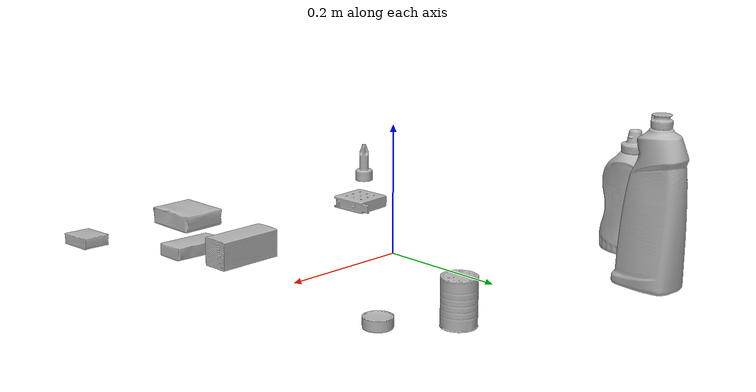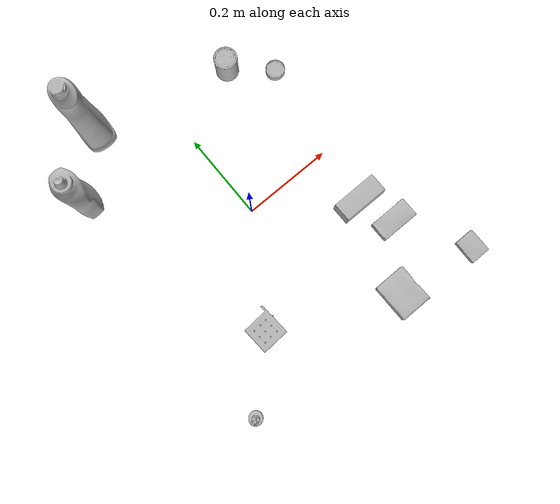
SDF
<?xml version="1.0" ?>
<sdf version="1.4">
  <world name="default">
    <light name="light1" type="point">
      <pose>0 0 1 0 0 0</pose>
      <diffuse>3 3 3 1</diffuse>
      <specular>3 3 3 1</specular>
    </light>
    <light name="light2" type="point">
      <pose>0 0.5 2 0 0 0</pose>
      <diffuse>1 1 1 1</diffuse>
      <specular>1 1 1 1</specular>
    </light>
    <light name="light3" type="point">
      <pose>0 0.5 2 0 0 0</pose>
      <diffuse>3 3 3 1</diffuse>
      <specular>3 3 3 1</specular>
    </light>
    <scene>
      <ambient>0.7 0.7 0.7</ambient>
    </scene>
    <model name="bottle1">
      <link name="link_bottle1">
        <collision name="default">
          <geometry>
            <mesh>
              <uri>model://mustard_bottle/collision_meshes/collision.obj</uri>
              <scale>1.0 1.0 1.0</scale>
            </mesh>
          </geometry>
          <surface>
            <friction>
              <ode>
                <mu>0.5</mu>
                <mu2>0.5</mu2>
              </ode>
            </friction>
          </surface>
        </collision>
        <visual name="default">
          <geometry>
            <mesh>
              <uri>model://mustard_bottle/visual_meshes/visual.dae</uri>
              <scale>1.0 1.0 1.0</scale>
            </mesh>
          </geometry>
        </visual>
        <inertial>
          <mass>0.9814921021461487</mass>
          <pose>0.000503245391882956 -0.00015647400869056582 -0.0174757968634367 0.00041823298570721707 0.000946579165099878 0.024853733541460008</pose>
          <inertia>
            <ixx>0.0027254699</ixx>
            <iyy>0.0023913688</iyy>
            <izz>0.0007182988</izz>
            <ixy>0</ixy>
            <ixz>0</ixz>
            <iyz>0</iyz>
          </inertia>
        </inertial>
      </link>
      <pose>-0.2608605921268463 0.2493351548910141 0.09615200757980347 1.3372007227725095e-05 1.441430237899984e-05 0.023969009317558982</pose>
    </model>
    <model name="bottle2">
      <link name="link_bottle2">
        <collision name="default">
          <geometry>
            <mesh>
              <uri>model://bleach_cleanser/collision_meshes/collision.obj</uri>
              <scale>1.0 1.0 1.0</scale>
            </mesh>
          </geometry>
          <surface>
            <friction>
              <ode>
                <mu>0.5</mu>
                <mu2>0.5</mu2>
              </ode>
            </friction>
          </surface>
        </collision>
        <visual name="default">
          <geometry>
            <mesh>
              <uri>model://bleach_cleanser/visual_meshes/visual.dae</uri>
              <scale>1.0 1.0 1.0</scale>
            </mesh>
          </geometry>
        </visual>
        <inertial>
          <mass>0.5613878965377808</mass>
          <pose>0.00012193182919872925 0.0037838828284293413 -0.02442161738872528 -0.07381670616369514 0.00042011545192634117 -0.006875071107578698</pose>
          <inertia>
            <ixx>0.0027323565</ixx>
            <iyy>0.002546156</iyy>
            <izz>0.0004671619</izz>
            <ixy>0</ixy>
            <ixz>0</ixz>
            <iyz>0</iyz>
          </inertia>
        </inertial>
      </link>
      <pose>-0.14984509348869324 0.3598741292953491 0.12578421831130981 -0.000205574969591132 1.2034427393068497e-05 -0.047810130244131346</pose>
    </model>
    <model name="toy1">
      <link name="link_toy1">
        <collision name="default">
          <geometry>
            <mesh>
              <uri>model://nine_hole_peg_test/collision_meshes/collision.obj</uri>
              <scale>0.5 0.5 0.5</scale>
            </mesh>
          </geometry>
          <surface>
            <friction>
              <ode>
                <mu>0.5</mu>
                <mu2>0.5</mu2>
              </ode>
            </friction>
          </surface>
        </collision>
        <visual name="default">
          <geometry>
            <mesh>
              <uri>model://nine_hole_peg_test/visual_meshes/visual.dae</uri>
              <scale>0.5 0.5 0.5</scale>
            </mesh>
          </geometry>
        </visual>
        <inertial>
          <mass>0.10001979023218155</mass>
          <pose>-0.002308693015947938 -0.0048238071613013744 1.323034393863054e-05 -0.001466679064329537 0.000719417562538249 -0.6342417933325166</pose>
          <inertia>
            <ixx>3.9099352e-05</ixx>
            <iyy>3.650665e-05</iyy>
            <izz>6.851359e-05</izz>
            <ixy>0</ixy>
            <ixz>0</ixz>
            <iyz>0</iyz>
          </inertia>
        </inertial>
      </link>
      <pose>-0.1386803835630417 -0.21114550530910492 0.010385498404502869 3.916402064848071e-09 8.225931026888306e-09 0.06716970125616965</pose>
    </model>
    <model name="toy2">
      <link name="link_toy2">
        <collision name="default">
          <geometry>
            <mesh>
              <uri>model://d_toy_airplane/collision_meshes/collision.obj</uri>
              <scale>1.0 1.0 1.0</scale>
            </mesh>
          </geometry>
          <surface>
            <friction>
              <ode>
                <mu>0.5</mu>
                <mu2>0.5</mu2>
              </ode>
            </friction>
          </surface>
        </collision>
        <visual name="default">
          <geometry>
            <mesh>
              <uri>model://d_toy_airplane/visual_meshes/visual.dae</uri>
              <scale>1.0 1.0 1.0</scale>
            </mesh>
          </geometry>
        </visual>
        <inertial>
          <mass>0.019254321232438087</mass>
          <pose>9.410314669366926e-05 -5.809308640891686e-05 -0.011728096753358841 0.0002669110283705203 0.00467899073598619 0.5194519611142697</pose>
          <inertia>
            <ixx>5.7720713e-06</ixx>
            <iyy>5.776424e-06</iyy>
            <izz>1.7426261e-06</izz>
            <ixy>0</ixy>
            <ixz>0</ixz>
            <iyz>0</iyz>
          </inertia>
        </inertial>
      </link>
      <pose>-0.2699941098690033 -0.33996737003326416 0.03333878517150879 -2.9853162312297402e-05 -0.00017021536056481163 -0.046181195525685836</pose>
    </model>
    <model name="can1">
      <link name="link_can1">
        <collision name="default">
          <geometry>
            <mesh>
              <uri>model://master_chef_can/collision_meshes/collision.obj</uri>
              <scale>0.5 0.5 0.5</scale>
            </mesh>
          </geometry>
          <surface>
            <friction>
              <ode>
                <mu>0.5</mu>
                <mu2>0.5</mu2>
              </ode>
            </friction>
          </surface>
        </collision>
        <visual name="default">
          <geometry>
            <mesh>
              <uri>model://master_chef_can/visual_meshes/visual.dae</uri>
              <scale>0.5 0.5 0.5</scale>
            </mesh>
          </geometry>
        </visual>
        <inertial>
          <mass>0.11909646540880203</mass>
          <pose>-4.661963976104744e-05 1.3926845099376806e-07 -5.07990553160198e-05 -0.0017995128948922 0.0006479239957886283 -0.6102624789319168</pose>
          <inertia>
            <ixx>6.990155e-05</ixx>
            <iyy>6.938709e-05</iyy>
            <izz>3.8625953e-05</izz>
            <ixy>0</ixy>
            <ixz>0</ixz>
            <iyz>0</iyz>
          </inertia>
        </inertial>
      </link>
      <pose>0.1601216197013855 0.28008508682250977 0.03530198708176613 -1.4263570791366288e-06 -7.359926799960313e-07 0.006799836813014068</pose>
    </model>
    <model name="can2">
      <link name="link_can2">
        <collision name="default">
          <geometry>
            <mesh>
              <uri>model://tuna_fish_can/collision_meshes/collision.obj</uri>
              <scale>0.5 0.5 0.5</scale>
            </mesh>
          </geometry>
          <surface>
            <friction>
              <ode>
                <mu>0.5</mu>
                <mu2>0.5</mu2>
              </ode>
            </friction>
          </surface>
        </collision>
        <visual name="default">
          <geometry>
            <mesh>
              <uri>model://tuna_fish_can/visual_meshes/visual.dae</uri>
              <scale>0.5 0.5 0.5</scale>
            </mesh>
          </geometry>
        </visual>
        <inertial>
          <mass>0.019333453848958015</mass>
          <pose>-2.0361452698125504e-05 -7.256490789586678e-06 -0.0005269024986773729 -0.0017944786606280685 0.0001716327651594619 0.24054823336333434</pose>
          <inertia>
            <ixx>2.6139116e-06</ixx>
            <iyy>2.6030175e-06</iyy>
            <izz>4.4727767e-06</izz>
            <ixy>0</ixy>
            <ixz>0</ixz>
            <iyz>0</iyz>
          </inertia>
        </inertial>
      </link>
      <pose>0.23997655510902405 0.21002435684204102 0.008520003408193588 5.8518523496040155e-09 1.7983937193440855e-09 -0.06722805855674743</pose>
    </model>
    <model name="box1">
      <link name="link_box1">
        <collision name="default">
          <geometry>
            <mesh>
              <uri>model://sugar_box/collision_meshes/collision.obj</uri>
              <scale>0.5 0.5 0.5</scale>
            </mesh>
          </geometry>
          <surface>
            <friction>
              <ode>
                <mu>0.5</mu>
                <mu2>0.5</mu2>
              </ode>
            </friction>
          </surface>
        </collision>
        <visual name="default">
          <geometry>
            <mesh>
              <uri>model://sugar_box/visual_meshes/visual.dae</uri>
              <scale>0.5 0.5 0.5</scale>
            </mesh>
          </geometry>
        </visual>
        <inertial>
          <mass>0.11277332901954651</mass>
          <pose>0.0005171863595023751 1.924554817378521e-05 -0.0001818240125430748 -0.00040462603870476286 0.0010506635217257978 0.002615378323397263</pose>
          <inertia>
            <ixx>2.34906e-05</ixx>
            <iyy>7.592646e-05</iyy>
            <izz>9.089305e-05</izz>
            <ixy>0</ixy>
            <ixz>0</ixz>
            <iyz>0</iyz>
          </inertia>
        </inertial>
      </link>
      <pose>0.21952272951602936 -0.21013343334197998 0.011399305425584316 0.000774956637936921 -0.023433197326196222 0.0002352621992729396</pose>
    </model>
    <model name="box2">
      <link name="link_box2">
        <collision name="default">
          <geometry>
            <mesh>
              <uri>model://gelatin_box/collision_meshes/collision.obj</uri>
              <scale>1.0 1.0 1.0</scale>
            </mesh>
          </geometry>
          <surface>
            <friction>
              <ode>
                <mu>0.5</mu>
                <mu2>0.5</mu2>
              </ode>
            </friction>
          </surface>
        </collision>
        <visual name="default">
          <geometry>
            <mesh>
              <uri>model://gelatin_box/visual_meshes/visual.dae</uri>
              <scale>1.0 1.0 1.0</scale>
            </mesh>
          </geometry>
        </visual>
        <inertial>
          <mass>0.18825438618659973</mass>
          <pose>0.0004319618456065655 0.00011156871914863586 -0.0003640321083366871 -0.0010503720853528096 -0.004755817758068365 0.016440559471334753</pose>
          <inertia>
            <ixx>0.00013289225</ixx>
            <iyy>9.492423e-05</iyy>
            <izz>0.0002022916</izz>
            <ixy>0</ixy>
            <ixz>0</ixz>
            <iyz>0</iyz>
          </inertia>
        </inertial>
      </link>
      <pose>0.12995122373104095 -0.3400716483592987 0.01516831386834383 0.005597497978997907 -0.007304572225919946 6.400765701321585e-06</pose>
    </model>
    <model name="box3">
      <link name="link_box3">
        <collision name="default">
          <geometry>
            <mesh>
              <uri>model://wood_block/collision_meshes/collision.obj</uri>
              <scale>0.5 0.5 0.5</scale>
            </mesh>
          </geometry>
          <surface>
            <friction>
              <ode>
                <mu>0.5</mu>
                <mu2>0.5</mu2>
              </ode>
            </friction>
          </surface>
        </collision>
        <visual name="default">
          <geometry>
            <mesh>
              <uri>model://wood_block/visual_meshes/visual.dae</uri>
              <scale>0.5 0.5 0.5</scale>
            </mesh>
          </geometry>
        </visual>
        <inertial>
          <mass>0.16905224323272705</mass>
          <pose>-2.906657982748584e-06 -0.00028540476341731846 0.00013204291462898254 -0.05220975529285028 -0.0051926941753174345 -0.0068613788950967446</pose>
          <inertia>
            <ixx>5.655437e-05</ixx>
            <iyy>0.00017865526</iyy>
            <izz>0.00017798702</izz>
            <ixy>0</ixy>
            <ixz>0</ixz>
            <iyz>0</iyz>
          </inertia>
        </inertial>
      </link>
      <pose>0.18994177877902985 -0.12943443655967712 0.022629264742136 -0.005208537916607159 0.005718707733154779 0.00530476201285482</pose>
    </model>
    <model name="box4">
      <link name="link_box4">
        <collision name="default">
          <geometry>
            <mesh>
              <uri>model://pudding_box/collision_meshes/collision.obj</uri>
              <scale>0.5 0.5 0.5</scale>
            </mesh>
          </geometry>
          <surface>
            <friction>
              <ode>
                <mu>0.5</mu>
                <mu2>0.5</mu2>
              </ode>
            </friction>
          </surface>
        </collision>
        <visual name="default">
          <geometry>
            <mesh>
              <uri>model://pudding_box/visual_meshes/visual.dae</uri>
              <scale>0.5 0.5 0.5</scale>
            </mesh>
          </geometry>
        </visual>
        <inertial>
          <mass>0.04372405260801315</mass>
          <pose>0.00024474109522998333 0.00040339428232982755 -0.00025944135268218815 0.005213099923843092 -0.006603798704775496 0.02007982702870814</pose>
          <inertia>
            <ixx>1.2356946e-05</ixx>
            <iyy>8.313842e-06</iyy>
            <izz>1.8248264e-05</izz>
            <ixy>0</ixy>
            <ixz>0</ixz>
            <iyz>0</iyz>
          </inertia>
        </inertial>
      </link>
      <pose>0.3097412884235382 -0.3602520823478699 0.009862903505563736 0.022348703176135964 -0.011391633332039932 -9.39814248733012e-05</pose>
    </model>
  </world>
</sdf>
